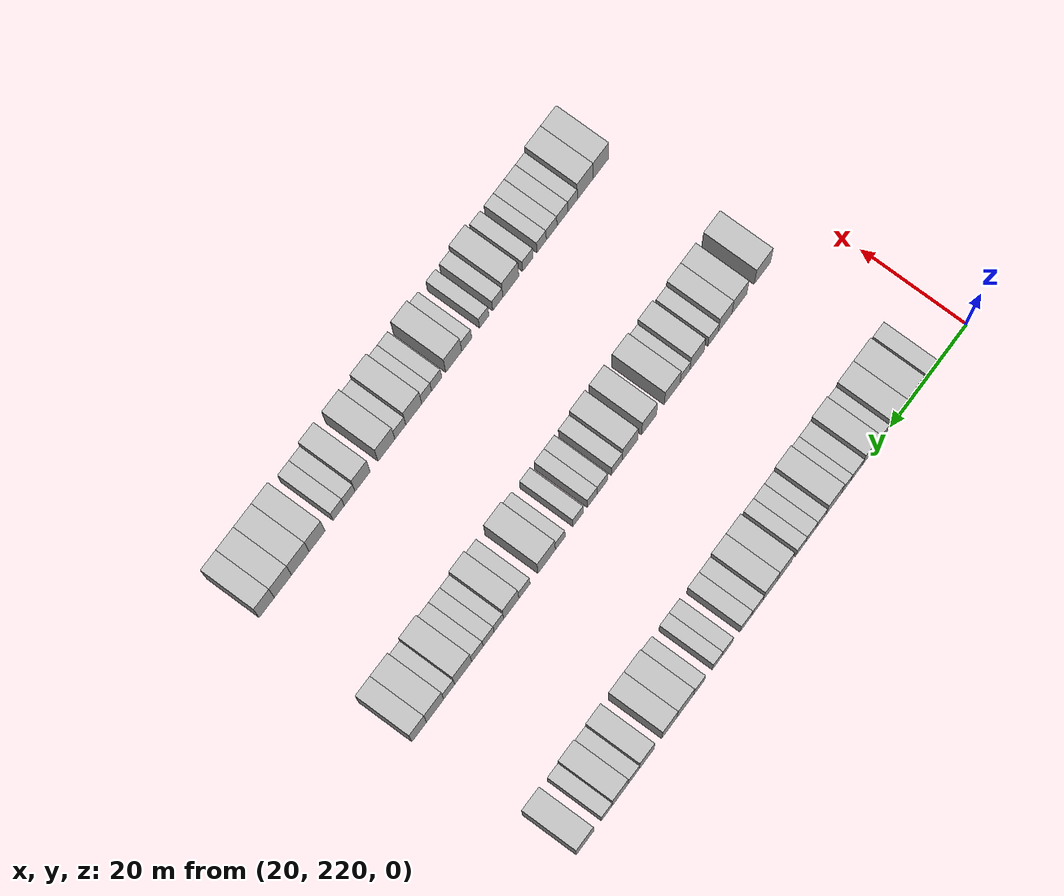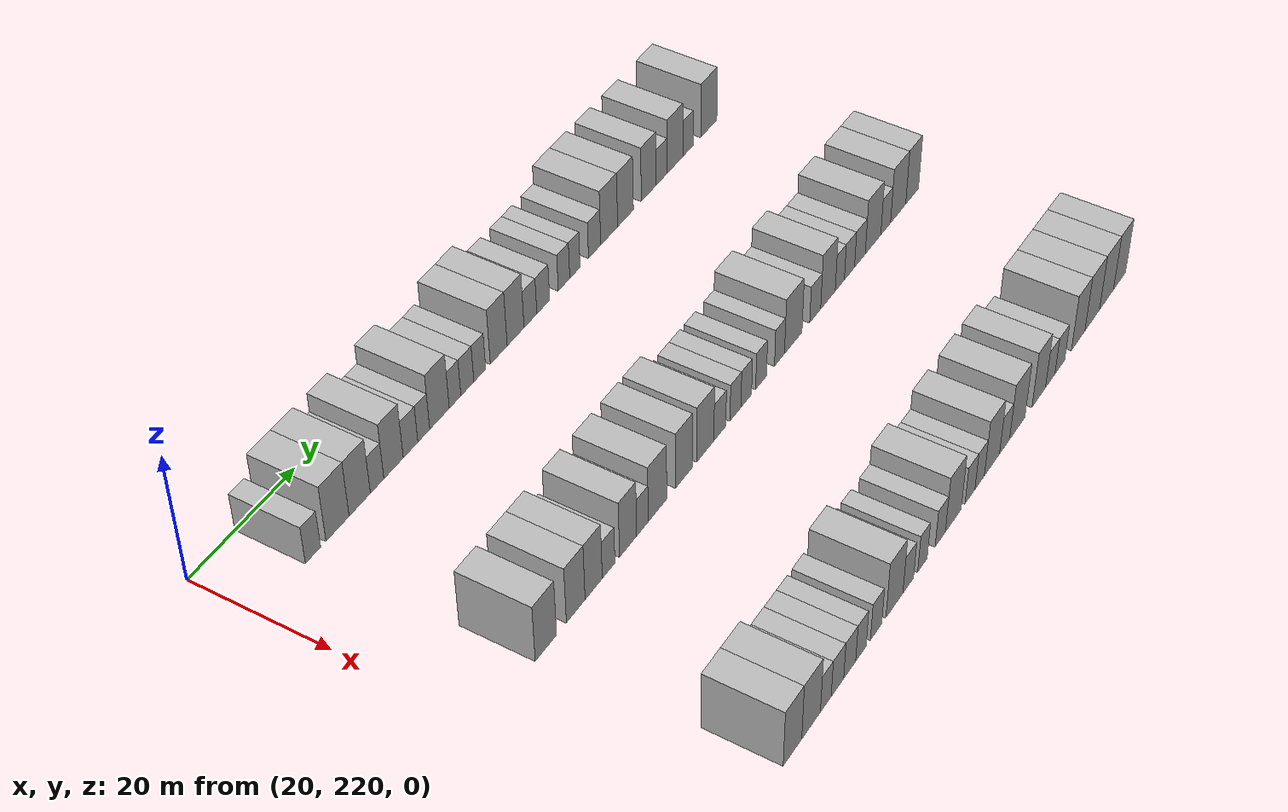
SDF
<sdf version="1.6">
 <world name="default">
  <model name="building_166">
   <static>1</static>
   <pose>25.0000 230.0532 0 0.000000 0.000000 0.000000</pose>
   <link name="link">
    <pose>0 0 3.00 0 0 0</pose>
    <collision name="collision"><geometry><box><size>10.0000 2.8873 6.0000</size></box></geometry></collision>
    <visual name="visual">
     <cast_shadows>0</cast_shadows>
     <geometry><box><size>10.0000 2.8873 6.0000</size></box></geometry>
     <material>
      <script>
       <uri>model://HANNAS_wall/materials/scripts</uri>
       <uri>model://HANNAS_wall/materials/textures</uri>
       <name>vrc/HANNAS_wall</name>
      </script>
     </material>
    </visual>
   </link>
  </model>
  <model name="building_167">
   <static>1</static>
   <pose>25.0000 234.7276 0 0.000000 0.000000 0.000000</pose>
   <link name="link">
    <pose>0 0 4.50 0 0 0</pose>
    <collision name="collision"><geometry><box><size>10.0000 4.4617 9.0000</size></box></geometry></collision>
    <visual name="visual">
     <cast_shadows>0</cast_shadows>
     <geometry><box><size>10.0000 4.4617 9.0000</size></box></geometry>
     <material>
      <script>
       <uri>model://HANNAS_wall/materials/scripts</uri>
       <uri>model://HANNAS_wall/materials/textures</uri>
       <name>vrc/HANNAS_wall</name>
      </script>
     </material>
    </visual>
   </link>
  </model>
  <model name="building_168">
   <static>1</static>
   <pose>25.0000 239.0422 0 0.000000 0.000000 0.000000</pose>
   <link name="link">
    <pose>0 0 4.50 0 0 0</pose>
    <collision name="collision"><geometry><box><size>10.0000 4.1675 9.0000</size></box></geometry></collision>
    <visual name="visual">
     <cast_shadows>0</cast_shadows>
     <geometry><box><size>10.0000 4.1675 9.0000</size></box></geometry>
     <material>
      <script>
       <uri>model://HANNAS_wall/materials/scripts</uri>
       <uri>model://HANNAS_wall/materials/textures</uri>
       <name>vrc/HANNAS_wall</name>
      </script>
     </material>
    </visual>
   </link>
  </model>
  <model name="building_169">
   <static>1</static>
   <pose>25.0000 242.4632 0 0.000000 0.000000 0.000000</pose>
   <link name="link">
    <pose>0 0 3.00 0 0 0</pose>
    <collision name="collision"><geometry><box><size>10.0000 2.6745 6.0000</size></box></geometry></collision>
    <visual name="visual">
     <cast_shadows>0</cast_shadows>
     <geometry><box><size>10.0000 2.6745 6.0000</size></box></geometry>
     <material>
      <script>
       <uri>model://HANNAS_wall/materials/scripts</uri>
       <uri>model://HANNAS_wall/materials/textures</uri>
       <name>vrc/HANNAS_wall</name>
      </script>
     </material>
    </visual>
   </link>
  </model>
  <model name="building_170">
   <static>1</static>
   <pose>25.0000 245.7538 0 0.000000 0.000000 0.000000</pose>
   <link name="link">
    <pose>0 0 4.50 0 0 0</pose>
    <collision name="collision"><geometry><box><size>10.0000 3.9067 9.0000</size></box></geometry></collision>
    <visual name="visual">
     <cast_shadows>0</cast_shadows>
     <geometry><box><size>10.0000 3.9067 9.0000</size></box></geometry>
     <material>
      <script>
       <uri>model://HANNAS_wall/materials/scripts</uri>
       <uri>model://HANNAS_wall/materials/textures</uri>
       <name>vrc/HANNAS_wall</name>
      </script>
     </material>
    </visual>
   </link>
  </model>
  <model name="building_171">
   <static>1</static>
   <pose>25.0000 249.2021 0 0.000000 0.000000 0.000000</pose>
   <link name="link">
    <pose>0 0 3.00 0 0 0</pose>
    <collision name="collision"><geometry><box><size>10.0000 2.9898 6.0000</size></box></geometry></collision>
    <visual name="visual">
     <cast_shadows>0</cast_shadows>
     <geometry><box><size>10.0000 2.9898 6.0000</size></box></geometry>
     <material>
      <script>
       <uri>model://HANNAS_wall/materials/scripts</uri>
       <uri>model://HANNAS_wall/materials/textures</uri>
       <name>vrc/HANNAS_wall</name>
      </script>
     </material>
    </visual>
   </link>
  </model>
  <model name="building_172">
   <static>1</static>
   <pose>25.0000 251.9261 0 0.000000 0.000000 0.000000</pose>
   <link name="link">
    <pose>0 0 3.00 0 0 0</pose>
    <collision name="collision"><geometry><box><size>10.0000 2.4583 6.0000</size></box></geometry></collision>
    <visual name="visual">
     <cast_shadows>0</cast_shadows>
     <geometry><box><size>10.0000 2.4583 6.0000</size></box></geometry>
     <material>
      <script>
       <uri>model://HANNAS_wall/materials/scripts</uri>
       <uri>model://HANNAS_wall/materials/textures</uri>
       <name>vrc/HANNAS_wall</name>
      </script>
     </material>
    </visual>
   </link>
  </model>
  <model name="building_173">
   <static>1</static>
   <pose>25.0000 255.2012 0 0.000000 0.000000 0.000000</pose>
   <link name="link">
    <pose>0 0 4.50 0 0 0</pose>
    <collision name="collision"><geometry><box><size>10.0000 4.0921 9.0000</size></box></geometry></collision>
    <visual name="visual">
     <cast_shadows>0</cast_shadows>
     <geometry><box><size>10.0000 4.0921 9.0000</size></box></geometry>
     <material>
      <script>
       <uri>model://HANNAS_wall/materials/scripts</uri>
       <uri>model://HANNAS_wall/materials/textures</uri>
       <name>vrc/HANNAS_wall</name>
      </script>
     </material>
    </visual>
   </link>
  </model>
  <model name="building_174">
   <static>1</static>
   <pose>25.0000 258.4764 0 0.000000 0.000000 0.000000</pose>
   <link name="link">
    <pose>0 0 3.00 0 0 0</pose>
    <collision name="collision"><geometry><box><size>10.0000 2.4582 6.0000</size></box></geometry></collision>
    <visual name="visual">
     <cast_shadows>0</cast_shadows>
     <geometry><box><size>10.0000 2.4582 6.0000</size></box></geometry>
     <material>
      <script>
       <uri>model://HANNAS_wall/materials/scripts</uri>
       <uri>model://HANNAS_wall/materials/textures</uri>
       <name>vrc/HANNAS_wall</name>
      </script>
     </material>
    </visual>
   </link>
  </model>
  <model name="building_175">
   <static>1</static>
   <pose>25.0000 261.1019 0 0.000000 0.000000 0.000000</pose>
   <link name="link">
    <pose>0 0 3.00 0 0 0</pose>
    <collision name="collision"><geometry><box><size>10.0000 2.7929 6.0000</size></box></geometry></collision>
    <visual name="visual">
     <cast_shadows>0</cast_shadows>
     <geometry><box><size>10.0000 2.7929 6.0000</size></box></geometry>
     <material>
      <script>
       <uri>model://HANNAS_wall/materials/scripts</uri>
       <uri>model://HANNAS_wall/materials/textures</uri>
       <name>vrc/HANNAS_wall</name>
      </script>
     </material>
    </visual>
   </link>
  </model>
  <model name="building_176">
   <static>1</static>
   <pose>25.0000 263.7818 0 0.000000 0.000000 0.000000</pose>
   <link name="link">
    <pose>0 0 3.00 0 0 0</pose>
    <collision name="collision"><geometry><box><size>10.0000 2.5668 6.0000</size></box></geometry></collision>
    <visual name="visual">
     <cast_shadows>0</cast_shadows>
     <geometry><box><size>10.0000 2.5668 6.0000</size></box></geometry>
     <material>
      <script>
       <uri>model://HANNAS_wall/materials/scripts</uri>
       <uri>model://HANNAS_wall/materials/textures</uri>
       <name>vrc/HANNAS_wall</name>
      </script>
     </material>
    </visual>
   </link>
  </model>
  <model name="building_177">
   <static>1</static>
   <pose>25.0000 267.9321 0 0.000000 0.000000 0.000000</pose>
   <link name="link">
    <pose>0 0 4.50 0 0 0</pose>
    <collision name="collision"><geometry><box><size>10.0000 3.7338 9.0000</size></box></geometry></collision>
    <visual name="visual">
     <cast_shadows>0</cast_shadows>
     <geometry><box><size>10.0000 3.7338 9.0000</size></box></geometry>
     <material>
      <script>
       <uri>model://HANNAS_wall/materials/scripts</uri>
       <uri>model://HANNAS_wall/materials/textures</uri>
       <name>vrc/HANNAS_wall</name>
      </script>
     </material>
    </visual>
   </link>
  </model>
  <model name="building_178">
   <static>1</static>
   <pose>25.0000 271.6884 0 0.000000 0.000000 0.000000</pose>
   <link name="link">
    <pose>0 0 4.50 0 0 0</pose>
    <collision name="collision"><geometry><box><size>10.0000 3.7788 9.0000</size></box></geometry></collision>
    <visual name="visual">
     <cast_shadows>0</cast_shadows>
     <geometry><box><size>10.0000 3.7788 9.0000</size></box></geometry>
     <material>
      <script>
       <uri>model://HANNAS_wall/materials/scripts</uri>
       <uri>model://HANNAS_wall/materials/textures</uri>
       <name>vrc/HANNAS_wall</name>
      </script>
     </material>
    </visual>
   </link>
  </model>
  <model name="building_179">
   <static>1</static>
   <pose>25.0000 275.0280 0 0.000000 0.000000 0.000000</pose>
   <link name="link">
    <pose>0 0 3.00 0 0 0</pose>
    <collision name="collision"><geometry><box><size>10.0000 2.9003 6.0000</size></box></geometry></collision>
    <visual name="visual">
     <cast_shadows>0</cast_shadows>
     <geometry><box><size>10.0000 2.9003 6.0000</size></box></geometry>
     <material>
      <script>
       <uri>model://HANNAS_wall/materials/scripts</uri>
       <uri>model://HANNAS_wall/materials/textures</uri>
       <name>vrc/HANNAS_wall</name>
      </script>
     </material>
    </visual>
   </link>
  </model>
  <model name="building_180">
   <static>1</static>
   <pose>25.0000 277.9539 0 0.000000 0.000000 0.000000</pose>
   <link name="link">
    <pose>0 0 3.00 0 0 0</pose>
    <collision name="collision"><geometry><box><size>10.0000 2.9516 6.0000</size></box></geometry></collision>
    <visual name="visual">
     <cast_shadows>0</cast_shadows>
     <geometry><box><size>10.0000 2.9516 6.0000</size></box></geometry>
     <material>
      <script>
       <uri>model://HANNAS_wall/materials/scripts</uri>
       <uri>model://HANNAS_wall/materials/textures</uri>
       <name>vrc/HANNAS_wall</name>
      </script>
     </material>
    </visual>
   </link>
  </model>
  <model name="building_181">
   <static>1</static>
   <pose>25.0000 282.7746 0 0.000000 0.000000 0.000000</pose>
   <link name="link">
    <pose>0 0 3.00 0 0 0</pose>
    <collision name="collision"><geometry><box><size>10.0000 2.6898 6.0000</size></box></geometry></collision>
    <visual name="visual">
     <cast_shadows>0</cast_shadows>
     <geometry><box><size>10.0000 2.6898 6.0000</size></box></geometry>
     <material>
      <script>
       <uri>model://HANNAS_wall/materials/scripts</uri>
       <uri>model://HANNAS_wall/materials/textures</uri>
       <name>vrc/HANNAS_wall</name>
      </script>
     </material>
    </visual>
   </link>
  </model>
  <model name="building_182">
   <static>1</static>
   <pose>25.0000 285.3396 0 0.000000 0.000000 0.000000</pose>
   <link name="link">
    <pose>0 0 3.00 0 0 0</pose>
    <collision name="collision"><geometry><box><size>10.0000 2.4402 6.0000</size></box></geometry></collision>
    <visual name="visual">
     <cast_shadows>0</cast_shadows>
     <geometry><box><size>10.0000 2.4402 6.0000</size></box></geometry>
     <material>
      <script>
       <uri>model://HANNAS_wall/materials/scripts</uri>
       <uri>model://HANNAS_wall/materials/textures</uri>
       <name>vrc/HANNAS_wall</name>
      </script>
     </material>
    </visual>
   </link>
  </model>
  <model name="building_183">
   <static>1</static>
   <pose>25.0000 290.0325 0 0.000000 0.000000 0.000000</pose>
   <link name="link">
    <pose>0 0 3.00 0 0 0</pose>
    <collision name="collision"><geometry><box><size>10.0000 2.9457 6.0000</size></box></geometry></collision>
    <visual name="visual">
     <cast_shadows>0</cast_shadows>
     <geometry><box><size>10.0000 2.9457 6.0000</size></box></geometry>
     <material>
      <script>
       <uri>model://HANNAS_wall/materials/scripts</uri>
       <uri>model://HANNAS_wall/materials/textures</uri>
       <name>vrc/HANNAS_wall</name>
      </script>
     </material>
    </visual>
   </link>
  </model>
  <model name="building_184">
   <static>1</static>
   <pose>25.0000 293.5721 0 0.000000 0.000000 0.000000</pose>
   <link name="link">
    <pose>0 0 4.50 0 0 0</pose>
    <collision name="collision"><geometry><box><size>10.0000 4.1334 9.0000</size></box></geometry></collision>
    <visual name="visual">
     <cast_shadows>0</cast_shadows>
     <geometry><box><size>10.0000 4.1334 9.0000</size></box></geometry>
     <material>
      <script>
       <uri>model://HANNAS_wall/materials/scripts</uri>
       <uri>model://HANNAS_wall/materials/textures</uri>
       <name>vrc/HANNAS_wall</name>
      </script>
     </material>
    </visual>
   </link>
  </model>
  <model name="building_185">
   <static>1</static>
   <pose>25.0000 297.5830 0 0.000000 0.000000 0.000000</pose>
   <link name="link">
    <pose>0 0 4.50 0 0 0</pose>
    <collision name="collision"><geometry><box><size>10.0000 3.8885 9.0000</size></box></geometry></collision>
    <visual name="visual">
     <cast_shadows>0</cast_shadows>
     <geometry><box><size>10.0000 3.8885 9.0000</size></box></geometry>
     <material>
      <script>
       <uri>model://HANNAS_wall/materials/scripts</uri>
       <uri>model://HANNAS_wall/materials/textures</uri>
       <name>vrc/HANNAS_wall</name>
      </script>
     </material>
    </visual>
   </link>
  </model>
  <model name="building_186">
   <static>1</static>
   <pose>25.0000 303.4093 0 0.000000 0.000000 0.000000</pose>
   <link name="link">
    <pose>0 0 4.50 0 0 0</pose>
    <collision name="collision"><geometry><box><size>10.0000 3.7640 9.0000</size></box></geometry></collision>
    <visual name="visual">
     <cast_shadows>0</cast_shadows>
     <geometry><box><size>10.0000 3.7640 9.0000</size></box></geometry>
     <material>
      <script>
       <uri>model://HANNAS_wall/materials/scripts</uri>
       <uri>model://HANNAS_wall/materials/textures</uri>
       <name>vrc/HANNAS_wall</name>
      </script>
     </material>
    </visual>
   </link>
  </model>
  <model name="building_187">
   <static>1</static>
   <pose>25.0000 306.7195 0 0.000000 0.000000 0.000000</pose>
   <link name="link">
    <pose>0 0 3.00 0 0 0</pose>
    <collision name="collision"><geometry><box><size>10.0000 2.8565 6.0000</size></box></geometry></collision>
    <visual name="visual">
     <cast_shadows>0</cast_shadows>
     <geometry><box><size>10.0000 2.8565 6.0000</size></box></geometry>
     <material>
      <script>
       <uri>model://HANNAS_wall/materials/scripts</uri>
       <uri>model://HANNAS_wall/materials/textures</uri>
       <name>vrc/HANNAS_wall</name>
      </script>
     </material>
    </visual>
   </link>
  </model>
  <model name="building_188">
   <static>1</static>
   <pose>25.0000 310.1537 0 0.000000 0.000000 0.000000</pose>
   <link name="link">
    <pose>0 0 4.50 0 0 0</pose>
    <collision name="collision"><geometry><box><size>10.0000 4.0118 9.0000</size></box></geometry></collision>
    <visual name="visual">
     <cast_shadows>0</cast_shadows>
     <geometry><box><size>10.0000 4.0118 9.0000</size></box></geometry>
     <material>
      <script>
       <uri>model://HANNAS_wall/materials/scripts</uri>
       <uri>model://HANNAS_wall/materials/textures</uri>
       <name>vrc/HANNAS_wall</name>
      </script>
     </material>
    </visual>
   </link>
  </model>
  <model name="building_189">
   <static>1</static>
   <pose>25.0000 313.5146 0 0.000000 0.000000 0.000000</pose>
   <link name="link">
    <pose>0 0 3.00 0 0 0</pose>
    <collision name="collision"><geometry><box><size>10.0000 2.7100 6.0000</size></box></geometry></collision>
    <visual name="visual">
     <cast_shadows>0</cast_shadows>
     <geometry><box><size>10.0000 2.7100 6.0000</size></box></geometry>
     <material>
      <script>
       <uri>model://HANNAS_wall/materials/scripts</uri>
       <uri>model://HANNAS_wall/materials/textures</uri>
       <name>vrc/HANNAS_wall</name>
      </script>
     </material>
    </visual>
   </link>
  </model>
  <model name="building_190">
   <static>1</static>
   <pose>25.0000 319.0314 0 0.000000 0.000000 0.000000</pose>
   <link name="link">
    <pose>0 0 4.50 0 0 0</pose>
    <collision name="collision"><geometry><box><size>10.0000 4.3237 9.0000</size></box></geometry></collision>
    <visual name="visual">
     <cast_shadows>0</cast_shadows>
     <geometry><box><size>10.0000 4.3237 9.0000</size></box></geometry>
     <material>
      <script>
       <uri>model://HANNAS_wall/materials/scripts</uri>
       <uri>model://HANNAS_wall/materials/textures</uri>
       <name>vrc/HANNAS_wall</name>
      </script>
     </material>
    </visual>
   </link>
  </model>
  <model name="building_395">
   <static>1</static>
   <pose>55.0000 232.1099 0 0.000000 0.000000 0.000000</pose>
   <link name="link">
    <pose>0 0 4.50 0 0 0</pose>
    <collision name="collision"><geometry><box><size>10.0000 4.2924 9.0000</size></box></geometry></collision>
    <visual name="visual">
     <cast_shadows>0</cast_shadows>
     <geometry><box><size>10.0000 4.2924 9.0000</size></box></geometry>
     <material>
      <script>
       <uri>model://HANNAS_wall/materials/scripts</uri>
       <uri>model://HANNAS_wall/materials/textures</uri>
       <name>vrc/HANNAS_wall</name>
      </script>
     </material>
    </visual>
   </link>
  </model>
  <model name="building_396">
   <static>1</static>
   <pose>55.0000 238.1965 0 0.000000 0.000000 0.000000</pose>
   <link name="link">
    <pose>0 0 4.50 0 0 0</pose>
    <collision name="collision"><geometry><box><size>10.0000 3.8809 9.0000</size></box></geometry></collision>
    <visual name="visual">
     <cast_shadows>0</cast_shadows>
     <geometry><box><size>10.0000 3.8809 9.0000</size></box></geometry>
     <material>
      <script>
       <uri>model://HANNAS_wall/materials/scripts</uri>
       <uri>model://HANNAS_wall/materials/textures</uri>
       <name>vrc/HANNAS_wall</name>
      </script>
     </material>
    </visual>
   </link>
  </model>
  <model name="building_397">
   <static>1</static>
   <pose>55.0000 241.9398 0 0.000000 0.000000 0.000000</pose>
   <link name="link">
    <pose>0 0 4.50 0 0 0</pose>
    <collision name="collision"><geometry><box><size>10.0000 3.6055 9.0000</size></box></geometry></collision>
    <visual name="visual">
     <cast_shadows>0</cast_shadows>
     <geometry><box><size>10.0000 3.6055 9.0000</size></box></geometry>
     <material>
      <script>
       <uri>model://HANNAS_wall/materials/scripts</uri>
       <uri>model://HANNAS_wall/materials/textures</uri>
       <name>vrc/HANNAS_wall</name>
      </script>
     </material>
    </visual>
   </link>
  </model>
  <model name="building_398">
   <static>1</static>
   <pose>55.0000 245.0865 0 0.000000 0.000000 0.000000</pose>
   <link name="link">
    <pose>0 0 3.00 0 0 0</pose>
    <collision name="collision"><geometry><box><size>10.0000 2.6880 6.0000</size></box></geometry></collision>
    <visual name="visual">
     <cast_shadows>0</cast_shadows>
     <geometry><box><size>10.0000 2.6880 6.0000</size></box></geometry>
     <material>
      <script>
       <uri>model://HANNAS_wall/materials/scripts</uri>
       <uri>model://HANNAS_wall/materials/textures</uri>
       <name>vrc/HANNAS_wall</name>
      </script>
     </material>
    </visual>
   </link>
  </model>
  <model name="building_399">
   <static>1</static>
   <pose>55.0000 249.2903 0 0.000000 0.000000 0.000000</pose>
   <link name="link">
    <pose>0 0 4.50 0 0 0</pose>
    <collision name="collision"><geometry><box><size>10.0000 3.7196 9.0000</size></box></geometry></collision>
    <visual name="visual">
     <cast_shadows>0</cast_shadows>
     <geometry><box><size>10.0000 3.7196 9.0000</size></box></geometry>
     <material>
      <script>
       <uri>model://HANNAS_wall/materials/scripts</uri>
       <uri>model://HANNAS_wall/materials/textures</uri>
       <name>vrc/HANNAS_wall</name>
      </script>
     </material>
    </visual>
   </link>
  </model>
  <model name="building_400">
   <static>1</static>
   <pose>55.0000 252.4268 0 0.000000 0.000000 0.000000</pose>
   <link name="link">
    <pose>0 0 3.00 0 0 0</pose>
    <collision name="collision"><geometry><box><size>10.0000 2.5534 6.0000</size></box></geometry></collision>
    <visual name="visual">
     <cast_shadows>0</cast_shadows>
     <geometry><box><size>10.0000 2.5534 6.0000</size></box></geometry>
     <material>
      <script>
       <uri>model://HANNAS_wall/materials/scripts</uri>
       <uri>model://HANNAS_wall/materials/textures</uri>
       <name>vrc/HANNAS_wall</name>
      </script>
     </material>
    </visual>
   </link>
  </model>
  <model name="building_401">
   <static>1</static>
   <pose>55.0000 255.7613 0 0.000000 0.000000 0.000000</pose>
   <link name="link">
    <pose>0 0 4.50 0 0 0</pose>
    <collision name="collision"><geometry><box><size>10.0000 4.1155 9.0000</size></box></geometry></collision>
    <visual name="visual">
     <cast_shadows>0</cast_shadows>
     <geometry><box><size>10.0000 4.1155 9.0000</size></box></geometry>
     <material>
      <script>
       <uri>model://HANNAS_wall/materials/scripts</uri>
       <uri>model://HANNAS_wall/materials/textures</uri>
       <name>vrc/HANNAS_wall</name>
      </script>
     </material>
    </visual>
   </link>
  </model>
  <model name="building_402">
   <static>1</static>
   <pose>55.0000 261.7501 0 0.000000 0.000000 0.000000</pose>
   <link name="link">
    <pose>0 0 4.50 0 0 0</pose>
    <collision name="collision"><geometry><box><size>10.0000 3.8620 9.0000</size></box></geometry></collision>
    <visual name="visual">
     <cast_shadows>0</cast_shadows>
     <geometry><box><size>10.0000 3.8620 9.0000</size></box></geometry>
     <material>
      <script>
       <uri>model://HANNAS_wall/materials/scripts</uri>
       <uri>model://HANNAS_wall/materials/textures</uri>
       <name>vrc/HANNAS_wall</name>
      </script>
     </material>
    </visual>
   </link>
  </model>
  <model name="building_403">
   <static>1</static>
   <pose>55.0000 266.6832 0 0.000000 0.000000 0.000000</pose>
   <link name="link">
    <pose>0 0 4.50 0 0 0</pose>
    <collision name="collision"><geometry><box><size>10.0000 4.0041 9.0000</size></box></geometry></collision>
    <visual name="visual">
     <cast_shadows>0</cast_shadows>
     <geometry><box><size>10.0000 4.0041 9.0000</size></box></geometry>
     <material>
      <script>
       <uri>model://HANNAS_wall/materials/scripts</uri>
       <uri>model://HANNAS_wall/materials/textures</uri>
       <name>vrc/HANNAS_wall</name>
      </script>
     </material>
    </visual>
   </link>
  </model>
  <model name="building_404">
   <static>1</static>
   <pose>55.0000 270.0987 0 0.000000 0.000000 0.000000</pose>
   <link name="link">
    <pose>0 0 3.00 0 0 0</pose>
    <collision name="collision"><geometry><box><size>10.0000 2.8269 6.0000</size></box></geometry></collision>
    <visual name="visual">
     <cast_shadows>0</cast_shadows>
     <geometry><box><size>10.0000 2.8269 6.0000</size></box></geometry>
     <material>
      <script>
       <uri>model://HANNAS_wall/materials/scripts</uri>
       <uri>model://HANNAS_wall/materials/textures</uri>
       <name>vrc/HANNAS_wall</name>
      </script>
     </material>
    </visual>
   </link>
  </model>
  <model name="building_405">
   <static>1</static>
   <pose>55.0000 273.8291 0 0.000000 0.000000 0.000000</pose>
   <link name="link">
    <pose>0 0 3.00 0 0 0</pose>
    <collision name="collision"><geometry><box><size>10.0000 2.6340 6.0000</size></box></geometry></collision>
    <visual name="visual">
     <cast_shadows>0</cast_shadows>
     <geometry><box><size>10.0000 2.6340 6.0000</size></box></geometry>
     <material>
      <script>
       <uri>model://HANNAS_wall/materials/scripts</uri>
       <uri>model://HANNAS_wall/materials/textures</uri>
       <name>vrc/HANNAS_wall</name>
      </script>
     </material>
    </visual>
   </link>
  </model>
  <model name="building_406">
   <static>1</static>
   <pose>55.0000 276.4304 0 0.000000 0.000000 0.000000</pose>
   <link name="link">
    <pose>0 0 3.00 0 0 0</pose>
    <collision name="collision"><geometry><box><size>10.0000 2.5686 6.0000</size></box></geometry></collision>
    <visual name="visual">
     <cast_shadows>0</cast_shadows>
     <geometry><box><size>10.0000 2.5686 6.0000</size></box></geometry>
     <material>
      <script>
       <uri>model://HANNAS_wall/materials/scripts</uri>
       <uri>model://HANNAS_wall/materials/textures</uri>
       <name>vrc/HANNAS_wall</name>
      </script>
     </material>
    </visual>
   </link>
  </model>
  <model name="building_407">
   <static>1</static>
   <pose>55.0000 280.0534 0 0.000000 0.000000 0.000000</pose>
   <link name="link">
    <pose>0 0 3.00 0 0 0</pose>
    <collision name="collision"><geometry><box><size>10.0000 2.6775 6.0000</size></box></geometry></collision>
    <visual name="visual">
     <cast_shadows>0</cast_shadows>
     <geometry><box><size>10.0000 2.6775 6.0000</size></box></geometry>
     <material>
      <script>
       <uri>model://HANNAS_wall/materials/scripts</uri>
       <uri>model://HANNAS_wall/materials/textures</uri>
       <name>vrc/HANNAS_wall</name>
      </script>
     </material>
    </visual>
   </link>
  </model>
  <model name="building_408">
   <static>1</static>
   <pose>55.0000 284.6484 0 0.000000 0.000000 0.000000</pose>
   <link name="link">
    <pose>0 0 3.00 0 0 0</pose>
    <collision name="collision"><geometry><box><size>10.0000 2.5124 6.0000</size></box></geometry></collision>
    <visual name="visual">
     <cast_shadows>0</cast_shadows>
     <geometry><box><size>10.0000 2.5124 6.0000</size></box></geometry>
     <material>
      <script>
       <uri>model://HANNAS_wall/materials/scripts</uri>
       <uri>model://HANNAS_wall/materials/textures</uri>
       <name>vrc/HANNAS_wall</name>
      </script>
     </material>
    </visual>
   </link>
  </model>
  <model name="building_409">
   <static>1</static>
   <pose>55.0000 288.1290 0 0.000000 0.000000 0.000000</pose>
   <link name="link">
    <pose>0 0 4.50 0 0 0</pose>
    <collision name="collision"><geometry><box><size>10.0000 4.4489 9.0000</size></box></geometry></collision>
    <visual name="visual">
     <cast_shadows>0</cast_shadows>
     <geometry><box><size>10.0000 4.4489 9.0000</size></box></geometry>
     <material>
      <script>
       <uri>model://HANNAS_wall/materials/scripts</uri>
       <uri>model://HANNAS_wall/materials/textures</uri>
       <name>vrc/HANNAS_wall</name>
      </script>
     </material>
    </visual>
   </link>
  </model>
  <model name="building_410">
   <static>1</static>
   <pose>55.0000 293.7821 0 0.000000 0.000000 0.000000</pose>
   <link name="link">
    <pose>0 0 3.00 0 0 0</pose>
    <collision name="collision"><geometry><box><size>10.0000 2.8572 6.0000</size></box></geometry></collision>
    <visual name="visual">
     <cast_shadows>0</cast_shadows>
     <geometry><box><size>10.0000 2.8572 6.0000</size></box></geometry>
     <material>
      <script>
       <uri>model://HANNAS_wall/materials/scripts</uri>
       <uri>model://HANNAS_wall/materials/textures</uri>
       <name>vrc/HANNAS_wall</name>
      </script>
     </material>
    </visual>
   </link>
  </model>
  <model name="building_411">
   <static>1</static>
   <pose>55.0000 297.1376 0 0.000000 0.000000 0.000000</pose>
   <link name="link">
    <pose>0 0 4.50 0 0 0</pose>
    <collision name="collision"><geometry><box><size>10.0000 3.8538 9.0000</size></box></geometry></collision>
    <visual name="visual">
     <cast_shadows>0</cast_shadows>
     <geometry><box><size>10.0000 3.8538 9.0000</size></box></geometry>
     <material>
      <script>
       <uri>model://HANNAS_wall/materials/scripts</uri>
       <uri>model://HANNAS_wall/materials/textures</uri>
       <name>vrc/HANNAS_wall</name>
      </script>
     </material>
    </visual>
   </link>
  </model>
  <model name="building_412">
   <static>1</static>
   <pose>55.0000 300.2844 0 0.000000 0.000000 0.000000</pose>
   <link name="link">
    <pose>0 0 3.00 0 0 0</pose>
    <collision name="collision"><geometry><box><size>10.0000 2.4399 6.0000</size></box></geometry></collision>
    <visual name="visual">
     <cast_shadows>0</cast_shadows>
     <geometry><box><size>10.0000 2.4399 6.0000</size></box></geometry>
     <material>
      <script>
       <uri>model://HANNAS_wall/materials/scripts</uri>
       <uri>model://HANNAS_wall/materials/textures</uri>
       <name>vrc/HANNAS_wall</name>
      </script>
     </material>
    </visual>
   </link>
  </model>
  <model name="building_413">
   <static>1</static>
   <pose>55.0000 302.8815 0 0.000000 0.000000 0.000000</pose>
   <link name="link">
    <pose>0 0 3.00 0 0 0</pose>
    <collision name="collision"><geometry><box><size>10.0000 2.7542 6.0000</size></box></geometry></collision>
    <visual name="visual">
     <cast_shadows>0</cast_shadows>
     <geometry><box><size>10.0000 2.7542 6.0000</size></box></geometry>
     <material>
      <script>
       <uri>model://HANNAS_wall/materials/scripts</uri>
       <uri>model://HANNAS_wall/materials/textures</uri>
       <name>vrc/HANNAS_wall</name>
      </script>
     </material>
    </visual>
   </link>
  </model>
  <model name="building_414">
   <static>1</static>
   <pose>55.0000 305.7188 0 0.000000 0.000000 0.000000</pose>
   <link name="link">
    <pose>0 0 3.00 0 0 0</pose>
    <collision name="collision"><geometry><box><size>10.0000 2.9205 6.0000</size></box></geometry></collision>
    <visual name="visual">
     <cast_shadows>0</cast_shadows>
     <geometry><box><size>10.0000 2.9205 6.0000</size></box></geometry>
     <material>
      <script>
       <uri>model://HANNAS_wall/materials/scripts</uri>
       <uri>model://HANNAS_wall/materials/textures</uri>
       <name>vrc/HANNAS_wall</name>
      </script>
     </material>
    </visual>
   </link>
  </model>
  <model name="building_415">
   <static>1</static>
   <pose>55.0000 309.3338 0 0.000000 0.000000 0.000000</pose>
   <link name="link">
    <pose>0 0 4.50 0 0 0</pose>
    <collision name="collision"><geometry><box><size>10.0000 4.3094 9.0000</size></box></geometry></collision>
    <visual name="visual">
     <cast_shadows>0</cast_shadows>
     <geometry><box><size>10.0000 4.3094 9.0000</size></box></geometry>
     <material>
      <script>
       <uri>model://HANNAS_wall/materials/scripts</uri>
       <uri>model://HANNAS_wall/materials/textures</uri>
       <name>vrc/HANNAS_wall</name>
      </script>
     </material>
    </visual>
   </link>
  </model>
  <model name="building_416">
   <static>1</static>
   <pose>55.0000 312.8611 0 0.000000 0.000000 0.000000</pose>
   <link name="link">
    <pose>0 0 3.00 0 0 0</pose>
    <collision name="collision"><geometry><box><size>10.0000 2.7453 6.0000</size></box></geometry></collision>
    <visual name="visual">
     <cast_shadows>0</cast_shadows>
     <geometry><box><size>10.0000 2.7453 6.0000</size></box></geometry>
     <material>
      <script>
       <uri>model://HANNAS_wall/materials/scripts</uri>
       <uri>model://HANNAS_wall/materials/textures</uri>
       <name>vrc/HANNAS_wall</name>
      </script>
     </material>
    </visual>
   </link>
  </model>
  <model name="building_417">
   <static>1</static>
   <pose>55.0000 316.3888 0 0.000000 0.000000 0.000000</pose>
   <link name="link">
    <pose>0 0 4.50 0 0 0</pose>
    <collision name="collision"><geometry><box><size>10.0000 4.3102 9.0000</size></box></geometry></collision>
    <visual name="visual">
     <cast_shadows>0</cast_shadows>
     <geometry><box><size>10.0000 4.3102 9.0000</size></box></geometry>
     <material>
      <script>
       <uri>model://HANNAS_wall/materials/scripts</uri>
       <uri>model://HANNAS_wall/materials/textures</uri>
       <name>vrc/HANNAS_wall</name>
      </script>
     </material>
    </visual>
   </link>
  </model>
  <model name="building_418">
   <static>1</static>
   <pose>55.0000 320.3834 0 0.000000 0.000000 0.000000</pose>
   <link name="link">
    <pose>0 0 4.50 0 0 0</pose>
    <collision name="collision"><geometry><box><size>10.0000 3.6789 9.0000</size></box></geometry></collision>
    <visual name="visual">
     <cast_shadows>0</cast_shadows>
     <geometry><box><size>10.0000 3.6789 9.0000</size></box></geometry>
     <material>
      <script>
       <uri>model://HANNAS_wall/materials/scripts</uri>
       <uri>model://HANNAS_wall/materials/textures</uri>
       <name>vrc/HANNAS_wall</name>
      </script>
     </material>
    </visual>
   </link>
  </model>
  <model name="building_625">
   <static>1</static>
   <pose>85.0000 233.4178 0 0.000000 0.000000 0.000000</pose>
   <link name="link">
    <pose>0 0 4.50 0 0 0</pose>
    <collision name="collision"><geometry><box><size>10.0000 4.0531 9.0000</size></box></geometry></collision>
    <visual name="visual">
     <cast_shadows>0</cast_shadows>
     <geometry><box><size>10.0000 4.0531 9.0000</size></box></geometry>
     <material>
      <script>
       <uri>model://HANNAS_wall/materials/scripts</uri>
       <uri>model://HANNAS_wall/materials/textures</uri>
       <name>vrc/HANNAS_wall</name>
      </script>
     </material>
    </visual>
   </link>
  </model>
  <model name="building_626">
   <static>1</static>
   <pose>85.0000 237.5161 0 0.000000 0.000000 0.000000</pose>
   <link name="link">
    <pose>0 0 4.50 0 0 0</pose>
    <collision name="collision"><geometry><box><size>10.0000 4.1436 9.0000</size></box></geometry></collision>
    <visual name="visual">
     <cast_shadows>0</cast_shadows>
     <geometry><box><size>10.0000 4.1436 9.0000</size></box></geometry>
     <material>
      <script>
       <uri>model://HANNAS_wall/materials/scripts</uri>
       <uri>model://HANNAS_wall/materials/textures</uri>
       <name>vrc/HANNAS_wall</name>
      </script>
     </material>
    </visual>
   </link>
  </model>
  <model name="building_627">
   <static>1</static>
   <pose>85.0000 240.8099 0 0.000000 0.000000 0.000000</pose>
   <link name="link">
    <pose>0 0 3.00 0 0 0</pose>
    <collision name="collision"><geometry><box><size>10.0000 2.4439 6.0000</size></box></geometry></collision>
    <visual name="visual">
     <cast_shadows>0</cast_shadows>
     <geometry><box><size>10.0000 2.4439 6.0000</size></box></geometry>
     <material>
      <script>
       <uri>model://HANNAS_wall/materials/scripts</uri>
       <uri>model://HANNAS_wall/materials/textures</uri>
       <name>vrc/HANNAS_wall</name>
      </script>
     </material>
    </visual>
   </link>
  </model>
  <model name="building_628">
   <static>1</static>
   <pose>85.0000 243.4578 0 0.000000 0.000000 0.000000</pose>
   <link name="link">
    <pose>0 0 3.00 0 0 0</pose>
    <collision name="collision"><geometry><box><size>10.0000 2.8520 6.0000</size></box></geometry></collision>
    <visual name="visual">
     <cast_shadows>0</cast_shadows>
     <geometry><box><size>10.0000 2.8520 6.0000</size></box></geometry>
     <material>
      <script>
       <uri>model://HANNAS_wall/materials/scripts</uri>
       <uri>model://HANNAS_wall/materials/textures</uri>
       <name>vrc/HANNAS_wall</name>
      </script>
     </material>
    </visual>
   </link>
  </model>
  <model name="building_629">
   <static>1</static>
   <pose>85.0000 246.2703 0 0.000000 0.000000 0.000000</pose>
   <link name="link">
    <pose>0 0 3.00 0 0 0</pose>
    <collision name="collision"><geometry><box><size>10.0000 2.7729 6.0000</size></box></geometry></collision>
    <visual name="visual">
     <cast_shadows>0</cast_shadows>
     <geometry><box><size>10.0000 2.7729 6.0000</size></box></geometry>
     <material>
      <script>
       <uri>model://HANNAS_wall/materials/scripts</uri>
       <uri>model://HANNAS_wall/materials/textures</uri>
       <name>vrc/HANNAS_wall</name>
      </script>
     </material>
    </visual>
   </link>
  </model>
  <model name="building_630">
   <static>1</static>
   <pose>85.0000 248.8818 0 0.000000 0.000000 0.000000</pose>
   <link name="link">
    <pose>0 0 3.00 0 0 0</pose>
    <collision name="collision"><geometry><box><size>10.0000 2.4501 6.0000</size></box></geometry></collision>
    <visual name="visual">
     <cast_shadows>0</cast_shadows>
     <geometry><box><size>10.0000 2.4501 6.0000</size></box></geometry>
     <material>
      <script>
       <uri>model://HANNAS_wall/materials/scripts</uri>
       <uri>model://HANNAS_wall/materials/textures</uri>
       <name>vrc/HANNAS_wall</name>
      </script>
     </material>
    </visual>
   </link>
  </model>
  <model name="building_631">
   <static>1</static>
   <pose>85.0000 252.4554 0 0.000000 0.000000 0.000000</pose>
   <link name="link">
    <pose>0 0 3.00 0 0 0</pose>
    <collision name="collision"><geometry><box><size>10.0000 2.6971 6.0000</size></box></geometry></collision>
    <visual name="visual">
     <cast_shadows>0</cast_shadows>
     <geometry><box><size>10.0000 2.6971 6.0000</size></box></geometry>
     <material>
      <script>
       <uri>model://HANNAS_wall/materials/scripts</uri>
       <uri>model://HANNAS_wall/materials/textures</uri>
       <name>vrc/HANNAS_wall</name>
      </script>
     </material>
    </visual>
   </link>
  </model>
  <model name="building_632">
   <static>1</static>
   <pose>85.0000 256.8594 0 0.000000 0.000000 0.000000</pose>
   <link name="link">
    <pose>0 0 4.50 0 0 0</pose>
    <collision name="collision"><geometry><box><size>10.0000 4.1109 9.0000</size></box></geometry></collision>
    <visual name="visual">
     <cast_shadows>0</cast_shadows>
     <geometry><box><size>10.0000 4.1109 9.0000</size></box></geometry>
     <material>
      <script>
       <uri>model://HANNAS_wall/materials/scripts</uri>
       <uri>model://HANNAS_wall/materials/textures</uri>
       <name>vrc/HANNAS_wall</name>
      </script>
     </material>
    </visual>
   </link>
  </model>
  <model name="building_633">
   <static>1</static>
   <pose>85.0000 260.2340 0 0.000000 0.000000 0.000000</pose>
   <link name="link">
    <pose>0 0 3.00 0 0 0</pose>
    <collision name="collision"><geometry><box><size>10.0000 2.6384 6.0000</size></box></geometry></collision>
    <visual name="visual">
     <cast_shadows>0</cast_shadows>
     <geometry><box><size>10.0000 2.6384 6.0000</size></box></geometry>
     <material>
      <script>
       <uri>model://HANNAS_wall/materials/scripts</uri>
       <uri>model://HANNAS_wall/materials/textures</uri>
       <name>vrc/HANNAS_wall</name>
      </script>
     </material>
    </visual>
   </link>
  </model>
  <model name="building_634">
   <static>1</static>
   <pose>85.0000 263.7537 0 0.000000 0.000000 0.000000</pose>
   <link name="link">
    <pose>0 0 3.00 0 0 0</pose>
    <collision name="collision"><geometry><box><size>10.0000 2.4010 6.0000</size></box></geometry></collision>
    <visual name="visual">
     <cast_shadows>0</cast_shadows>
     <geometry><box><size>10.0000 2.4010 6.0000</size></box></geometry>
     <material>
      <script>
       <uri>model://HANNAS_wall/materials/scripts</uri>
       <uri>model://HANNAS_wall/materials/textures</uri>
       <name>vrc/HANNAS_wall</name>
      </script>
     </material>
    </visual>
   </link>
  </model>
  <model name="building_635">
   <static>1</static>
   <pose>85.0000 268.2530 0 0.000000 0.000000 0.000000</pose>
   <link name="link">
    <pose>0 0 3.00 0 0 0</pose>
    <collision name="collision"><geometry><box><size>10.0000 2.5975 6.0000</size></box></geometry></collision>
    <visual name="visual">
     <cast_shadows>0</cast_shadows>
     <geometry><box><size>10.0000 2.5975 6.0000</size></box></geometry>
     <material>
      <script>
       <uri>model://HANNAS_wall/materials/scripts</uri>
       <uri>model://HANNAS_wall/materials/textures</uri>
       <name>vrc/HANNAS_wall</name>
      </script>
     </material>
    </visual>
   </link>
  </model>
  <model name="building_636">
   <static>1</static>
   <pose>85.0000 271.5999 0 0.000000 0.000000 0.000000</pose>
   <link name="link">
    <pose>0 0 4.50 0 0 0</pose>
    <collision name="collision"><geometry><box><size>10.0000 4.0965 9.0000</size></box></geometry></collision>
    <visual name="visual">
     <cast_shadows>0</cast_shadows>
     <geometry><box><size>10.0000 4.0965 9.0000</size></box></geometry>
     <material>
      <script>
       <uri>model://HANNAS_wall/materials/scripts</uri>
       <uri>model://HANNAS_wall/materials/textures</uri>
       <name>vrc/HANNAS_wall</name>
      </script>
     </material>
    </visual>
   </link>
  </model>
  <model name="building_637">
   <static>1</static>
   <pose>85.0000 275.9610 0 0.000000 0.000000 0.000000</pose>
   <link name="link">
    <pose>0 0 3.00 0 0 0</pose>
    <collision name="collision"><geometry><box><size>10.0000 2.6257 6.0000</size></box></geometry></collision>
    <visual name="visual">
     <cast_shadows>0</cast_shadows>
     <geometry><box><size>10.0000 2.6257 6.0000</size></box></geometry>
     <material>
      <script>
       <uri>model://HANNAS_wall/materials/scripts</uri>
       <uri>model://HANNAS_wall/materials/textures</uri>
       <name>vrc/HANNAS_wall</name>
      </script>
     </material>
    </visual>
   </link>
  </model>
  <model name="building_638">
   <static>1</static>
   <pose>85.0000 278.5276 0 0.000000 0.000000 0.000000</pose>
   <link name="link">
    <pose>0 0 3.00 0 0 0</pose>
    <collision name="collision"><geometry><box><size>10.0000 2.5075 6.0000</size></box></geometry></collision>
    <visual name="visual">
     <cast_shadows>0</cast_shadows>
     <geometry><box><size>10.0000 2.5075 6.0000</size></box></geometry>
     <material>
      <script>
       <uri>model://HANNAS_wall/materials/scripts</uri>
       <uri>model://HANNAS_wall/materials/textures</uri>
       <name>vrc/HANNAS_wall</name>
      </script>
     </material>
    </visual>
   </link>
  </model>
  <model name="building_639">
   <static>1</static>
   <pose>85.0000 281.8202 0 0.000000 0.000000 0.000000</pose>
   <link name="link">
    <pose>0 0 4.50 0 0 0</pose>
    <collision name="collision"><geometry><box><size>10.0000 4.0776 9.0000</size></box></geometry></collision>
    <visual name="visual">
     <cast_shadows>0</cast_shadows>
     <geometry><box><size>10.0000 4.0776 9.0000</size></box></geometry>
     <material>
      <script>
       <uri>model://HANNAS_wall/materials/scripts</uri>
       <uri>model://HANNAS_wall/materials/textures</uri>
       <name>vrc/HANNAS_wall</name>
      </script>
     </material>
    </visual>
   </link>
  </model>
  <model name="building_640">
   <static>1</static>
   <pose>85.0000 285.2512 0 0.000000 0.000000 0.000000</pose>
   <link name="link">
    <pose>0 0 3.00 0 0 0</pose>
    <collision name="collision"><geometry><box><size>10.0000 2.7846 6.0000</size></box></geometry></collision>
    <visual name="visual">
     <cast_shadows>0</cast_shadows>
     <geometry><box><size>10.0000 2.7846 6.0000</size></box></geometry>
     <material>
      <script>
       <uri>model://HANNAS_wall/materials/scripts</uri>
       <uri>model://HANNAS_wall/materials/textures</uri>
       <name>vrc/HANNAS_wall</name>
      </script>
     </material>
    </visual>
   </link>
  </model>
  <model name="building_641">
   <static>1</static>
   <pose>85.0000 288.7729 0 0.000000 0.000000 0.000000</pose>
   <link name="link">
    <pose>0 0 4.50 0 0 0</pose>
    <collision name="collision"><geometry><box><size>10.0000 4.2589 9.0000</size></box></geometry></collision>
    <visual name="visual">
     <cast_shadows>0</cast_shadows>
     <geometry><box><size>10.0000 4.2589 9.0000</size></box></geometry>
     <material>
      <script>
       <uri>model://HANNAS_wall/materials/scripts</uri>
       <uri>model://HANNAS_wall/materials/textures</uri>
       <name>vrc/HANNAS_wall</name>
      </script>
     </material>
    </visual>
   </link>
  </model>
  <model name="building_642">
   <static>1</static>
   <pose>85.0000 294.8204 0 0.000000 0.000000 0.000000</pose>
   <link name="link">
    <pose>0 0 4.50 0 0 0</pose>
    <collision name="collision"><geometry><box><size>10.0000 3.8361 9.0000</size></box></geometry></collision>
    <visual name="visual">
     <cast_shadows>0</cast_shadows>
     <geometry><box><size>10.0000 3.8361 9.0000</size></box></geometry>
     <material>
      <script>
       <uri>model://HANNAS_wall/materials/scripts</uri>
       <uri>model://HANNAS_wall/materials/textures</uri>
       <name>vrc/HANNAS_wall</name>
      </script>
     </material>
    </visual>
   </link>
  </model>
  <model name="building_643">
   <static>1</static>
   <pose>85.0000 298.1074 0 0.000000 0.000000 0.000000</pose>
   <link name="link">
    <pose>0 0 3.00 0 0 0</pose>
    <collision name="collision"><geometry><box><size>10.0000 2.7380 6.0000</size></box></geometry></collision>
    <visual name="visual">
     <cast_shadows>0</cast_shadows>
     <geometry><box><size>10.0000 2.7380 6.0000</size></box></geometry>
     <material>
      <script>
       <uri>model://HANNAS_wall/materials/scripts</uri>
       <uri>model://HANNAS_wall/materials/textures</uri>
       <name>vrc/HANNAS_wall</name>
      </script>
     </material>
    </visual>
   </link>
  </model>
  <model name="building_644">
   <static>1</static>
   <pose>85.0000 300.8946 0 0.000000 0.000000 0.000000</pose>
   <link name="link">
    <pose>0 0 3.00 0 0 0</pose>
    <collision name="collision"><geometry><box><size>10.0000 2.8365 6.0000</size></box></geometry></collision>
    <visual name="visual">
     <cast_shadows>0</cast_shadows>
     <geometry><box><size>10.0000 2.8365 6.0000</size></box></geometry>
     <material>
      <script>
       <uri>model://HANNAS_wall/materials/scripts</uri>
       <uri>model://HANNAS_wall/materials/textures</uri>
       <name>vrc/HANNAS_wall</name>
      </script>
     </material>
    </visual>
   </link>
  </model>
  <model name="building_645">
   <static>1</static>
   <pose>85.0000 306.3187 0 0.000000 0.000000 0.000000</pose>
   <link name="link">
    <pose>0 0 4.50 0 0 0</pose>
    <collision name="collision"><geometry><box><size>10.0000 4.0116 9.0000</size></box></geometry></collision>
    <visual name="visual">
     <cast_shadows>0</cast_shadows>
     <geometry><box><size>10.0000 4.0116 9.0000</size></box></geometry>
     <material>
      <script>
       <uri>model://HANNAS_wall/materials/scripts</uri>
       <uri>model://HANNAS_wall/materials/textures</uri>
       <name>vrc/HANNAS_wall</name>
      </script>
     </material>
    </visual>
   </link>
  </model>
  <model name="building_646">
   <static>1</static>
   <pose>85.0000 310.5406 0 0.000000 0.000000 0.000000</pose>
   <link name="link">
    <pose>0 0 4.50 0 0 0</pose>
    <collision name="collision"><geometry><box><size>10.0000 4.4324 9.0000</size></box></geometry></collision>
    <visual name="visual">
     <cast_shadows>0</cast_shadows>
     <geometry><box><size>10.0000 4.4324 9.0000</size></box></geometry>
     <material>
      <script>
       <uri>model://HANNAS_wall/materials/scripts</uri>
       <uri>model://HANNAS_wall/materials/textures</uri>
       <name>vrc/HANNAS_wall</name>
      </script>
     </material>
    </visual>
   </link>
  </model>
  <model name="building_647">
   <static>1</static>
   <pose>85.0000 314.9133 0 0.000000 0.000000 0.000000</pose>
   <link name="link">
    <pose>0 0 4.50 0 0 0</pose>
    <collision name="collision"><geometry><box><size>10.0000 4.3131 9.0000</size></box></geometry></collision>
    <visual name="visual">
     <cast_shadows>0</cast_shadows>
     <geometry><box><size>10.0000 4.3131 9.0000</size></box></geometry>
     <material>
      <script>
       <uri>model://HANNAS_wall/materials/scripts</uri>
       <uri>model://HANNAS_wall/materials/textures</uri>
       <name>vrc/HANNAS_wall</name>
      </script>
     </material>
    </visual>
   </link>
  </model>
  <model name="building_648">
   <static>1</static>
   <pose>85.0000 318.9703 0 0.000000 0.000000 0.000000</pose>
   <link name="link">
    <pose>0 0 4.50 0 0 0</pose>
    <collision name="collision"><geometry><box><size>10.0000 3.8008 9.0000</size></box></geometry></collision>
    <visual name="visual">
     <cast_shadows>0</cast_shadows>
     <geometry><box><size>10.0000 3.8008 9.0000</size></box></geometry>
     <material>
      <script>
       <uri>model://HANNAS_wall/materials/scripts</uri>
       <uri>model://HANNAS_wall/materials/textures</uri>
       <name>vrc/HANNAS_wall</name>
      </script>
     </material>
    </visual>
   </link>
  </model>
 </world>
</sdf>
